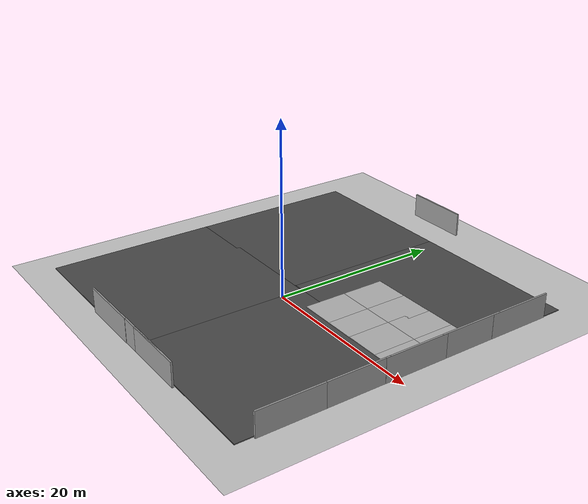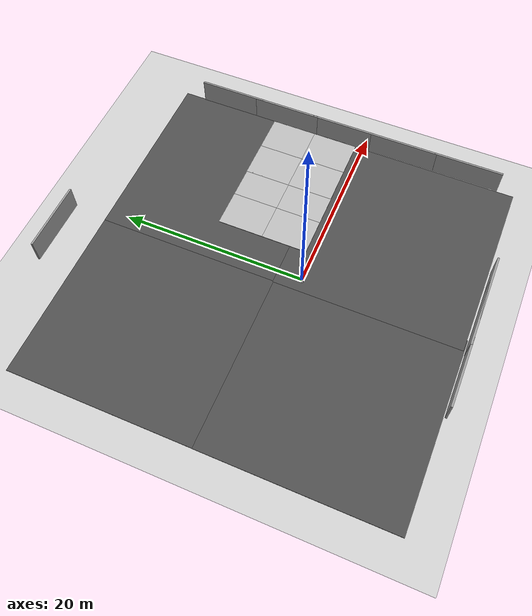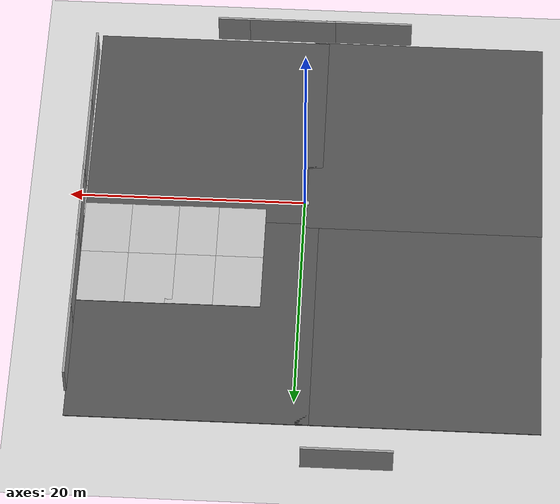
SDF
<sdf version="1.6">
 <world name="default">
  <model name="ground_plane">
   <static>1</static>
   <link name="link">
    <collision name="collision">
     <geometry><plane><normal>0 0 1</normal><size>100 100</size></plane></geometry>
     <surface><friction><ode><mu>100</mu><mu2>50</mu2></ode></friction></surface>
    </collision>
    <visual name="visual">
     <cast_shadows>0</cast_shadows>
     <geometry><plane><normal>0 0 1</normal><size>100 100</size></plane></geometry>
     <material>
      <script><uri>file://media/materials/scripts/gazebo.material</uri><name>Gazebo/Grey</name></script>
     </material>
    </visual>
   </link>
  </model>
  <model name="asphalt_plane">
   <static>1</static>
   <link name="link">
    <collision name="collision">
     <geometry><box><size>20 20 0.1</size></box></geometry>
     <surface><friction><ode><mu>100</mu><mu2>50</mu2></ode></friction></surface>
    </collision>
    <visual name="visual">
     <cast_shadows>0</cast_shadows>
     <geometry><box><size>20 20 0.1</size></box></geometry>
     <material>
      <script>
       <uri>model://asphalt_plane/materials/scripts</uri>
       <uri>model://asphalt_plane/materials/textures</uri>
       <name>vrc/asphalt</name>
      </script>
     </material>
    </visual>
   </link>
   <pose>-10.1692 -7.43707 0 0 -0 0</pose>
  </model>
  <model name="asphalt_plane_clone">
   <static>1</static>
   <link name="link">
    <collision name="collision">
     <geometry><box><size>20 20 0.1</size></box></geometry>
     <surface><friction><ode><mu>100</mu><mu2>50</mu2></ode></friction></surface>
    </collision>
    <visual name="visual">
     <cast_shadows>0</cast_shadows>
     <geometry><box><size>20 20 0.1</size></box></geometry>
     <material>
      <script>
       <uri>model://asphalt_plane/materials/scripts</uri>
       <uri>model://asphalt_plane/materials/textures</uri>
       <name>vrc/asphalt</name>
      </script>
     </material>
    </visual>
   </link>
   <pose>-10.1603 12.171 0 0 -0 0</pose>
  </model>
  <model name="asphalt_plane_clone_clone">
   <static>1</static>
   <link name="link">
    <collision name="collision">
     <geometry><box><size>20 20 0.1</size></box></geometry>
     <surface><friction><ode><mu>100</mu><mu2>50</mu2></ode></friction></surface>
    </collision>
    <visual name="visual">
     <cast_shadows>0</cast_shadows>
     <geometry><box><size>20 20 0.1</size></box></geometry>
     <material>
      <script>
       <uri>model://asphalt_plane/materials/scripts</uri>
       <uri>model://asphalt_plane/materials/textures</uri>
       <name>vrc/asphalt</name>
      </script>
     </material>
    </visual>
   </link>
   <pose>8.71597 12.1785 0 0 -0 0</pose>
  </model>
  <model name="asphalt_plane_clone_clone_0">
   <static>1</static>
   <link name="link">
    <collision name="collision">
     <geometry><box><size>20 20 0.1</size></box></geometry>
     <surface><friction><ode><mu>100</mu><mu2>50</mu2></ode></friction></surface>
    </collision>
    <visual name="visual">
     <cast_shadows>0</cast_shadows>
     <geometry><box><size>20 20 0.1</size></box></geometry>
     <material>
      <script>
       <uri>model://asphalt_plane/materials/scripts</uri>
       <uri>model://asphalt_plane/materials/textures</uri>
       <name>vrc/asphalt</name>
      </script>
     </material>
    </visual>
   </link>
   <pose>8.60996 -7.34898 0 0 -0 0</pose>
  </model>
  <model name="grey_wall">
   <static>1</static>
   <link name="link">
    <pose>0 0 1.4 0 -0 0</pose>
    <collision name="collision"><geometry><box><size>7.5 0.2 2.8</size></box></geometry></collision>
    <visual name="visual">
     <cast_shadows>0</cast_shadows>
     <geometry><box><size>7.5 0.2 2.8</size></box></geometry>
     <material>
      <script>
       <uri>model://grey_wall/materials/scripts</uri>
       <uri>model://grey_wall/materials/textures</uri>
       <name>vrc/grey_wall</name>
      </script>
     </material>
    </visual>
   </link>
   <pose>-4.8114 -17.6626 0 0 -0 0</pose>
  </model>
  <model name="grey_wall_clone">
   <static>1</static>
   <link name="link">
    <pose>0 0 1.4 0 -0 0</pose>
    <collision name="collision"><geometry><box><size>7.5 0.2 2.8</size></box></geometry></collision>
    <visual name="visual">
     <cast_shadows>0</cast_shadows>
     <geometry><box><size>7.5 0.2 2.8</size></box></geometry>
     <material>
      <script>
       <uri>model://grey_wall/materials/scripts</uri>
       <uri>model://grey_wall/materials/textures</uri>
       <name>vrc/grey_wall</name>
      </script>
     </material>
    </visual>
   </link>
   <pose>1.84642 -17.6367 0 0 -0 0</pose>
  </model>
  <model name="grey_wall_clone_0">
   <static>1</static>
   <link name="link">
    <pose>0 0 1.4 0 -0 0</pose>
    <collision name="collision"><geometry><box><size>7.5 0.2 2.8</size></box></geometry></collision>
    <visual name="visual">
     <cast_shadows>0</cast_shadows>
     <geometry><box><size>7.5 0.2 2.8</size></box></geometry>
     <material>
      <script>
       <uri>model://grey_wall/materials/scripts</uri>
       <uri>model://grey_wall/materials/textures</uri>
       <name>vrc/grey_wall</name>
      </script>
     </material>
    </visual>
   </link>
   <pose>4.62088 -17.6372 0 0 -0 0</pose>
  </model>
  <model name="grey_wall_clone_clone">
   <static>1</static>
   <link name="link">
    <pose>0 0 1.4 0 -0 0</pose>
    <collision name="collision"><geometry><box><size>7.5 0.2 2.8</size></box></geometry></collision>
    <visual name="visual">
     <cast_shadows>0</cast_shadows>
     <geometry><box><size>7.5 0.2 2.8</size></box></geometry>
     <material>
      <script>
       <uri>model://grey_wall/materials/scripts</uri>
       <uri>model://grey_wall/materials/textures</uri>
       <name>vrc/grey_wall</name>
      </script>
     </material>
    </visual>
   </link>
   <pose>-4.48764 26.0166 0 0 -0 0</pose>
  </model>
  <model name="grey_wall_clone_clone_clone">
   <static>1</static>
   <link name="link">
    <pose>0 0 1.4 0 -0 0</pose>
    <collision name="collision"><geometry><box><size>7.5 0.2 2.8</size></box></geometry></collision>
    <visual name="visual">
     <cast_shadows>0</cast_shadows>
     <geometry><box><size>7.5 0.2 2.8</size></box></geometry>
     <material>
      <script>
       <uri>model://grey_wall/materials/scripts</uri>
       <uri>model://grey_wall/materials/textures</uri>
       <name>vrc/grey_wall</name>
      </script>
     </material>
    </visual>
   </link>
   <pose>18.7544 16.0387 0 0 0 -1.56734</pose>
  </model>
  <model name="grey_wall_clone_clone_clone_clone">
   <static>1</static>
   <link name="link">
    <pose>0 0 1.4 0 -0 0</pose>
    <collision name="collision"><geometry><box><size>7.5 0.2 2.8</size></box></geometry></collision>
    <visual name="visual">
     <cast_shadows>0</cast_shadows>
     <geometry><box><size>7.5 0.2 2.8</size></box></geometry>
     <material>
      <script>
       <uri>model://grey_wall/materials/scripts</uri>
       <uri>model://grey_wall/materials/textures</uri>
       <name>vrc/grey_wall</name>
      </script>
     </material>
    </visual>
   </link>
   <pose>18.767 9.41754 0 0 0 -1.56734</pose>
  </model>
  <model name="grey_wall_clone_clone_clone_clone_0">
   <static>1</static>
   <link name="link">
    <pose>0 0 1.4 0 -0 0</pose>
    <collision name="collision"><geometry><box><size>7.5 0.2 2.8</size></box></geometry></collision>
    <visual name="visual">
     <cast_shadows>0</cast_shadows>
     <geometry><box><size>7.5 0.2 2.8</size></box></geometry>
     <material>
      <script>
       <uri>model://grey_wall/materials/scripts</uri>
       <uri>model://grey_wall/materials/textures</uri>
       <name>vrc/grey_wall</name>
      </script>
     </material>
    </visual>
   </link>
   <pose>18.7963 2.45369 0 0 0 -1.56734</pose>
  </model>
  <model name="grey_wall_clone_clone_clone_clone_1">
   <static>1</static>
   <link name="link">
    <pose>0 0 1.4 0 -0 0</pose>
    <collision name="collision"><geometry><box><size>7.5 0.2 2.8</size></box></geometry></collision>
    <visual name="visual">
     <cast_shadows>0</cast_shadows>
     <geometry><box><size>7.5 0.2 2.8</size></box></geometry>
     <material>
      <script>
       <uri>model://grey_wall/materials/scripts</uri>
       <uri>model://grey_wall/materials/textures</uri>
       <name>vrc/grey_wall</name>
      </script>
     </material>
    </visual>
   </link>
   <pose>18.8058 -4.41342 0 0 0 -1.56734</pose>
  </model>
  <model name="grey_wall_clone_clone_clone_clone_2">
   <static>1</static>
   <link name="link">
    <pose>0 0 1.4 0 -0 0</pose>
    <collision name="collision"><geometry><box><size>7.5 0.2 2.8</size></box></geometry></collision>
    <visual name="visual">
     <cast_shadows>0</cast_shadows>
     <geometry><box><size>7.5 0.2 2.8</size></box></geometry>
     <material>
      <script>
       <uri>model://grey_wall/materials/scripts</uri>
       <uri>model://grey_wall/materials/textures</uri>
       <name>vrc/grey_wall</name>
      </script>
     </material>
    </visual>
   </link>
   <pose>18.8343 -11.7301 0 0 0 -1.56734</pose>
  </model>
  <model name="mud_box">
   <static>1</static>
   <link name="link">
    <collision name="collision"><geometry><box><size>8 10 0.2</size></box></geometry></collision>
    <visual name="visual_1">
     <pose>-2 2.5 0 0 -0 0</pose>
     <cast_shadows>0</cast_shadows>
     <geometry><box><size>4 5 0.2</size></box></geometry>
     <material>
      <script>
       <uri>model://mud_box/materials/scripts</uri>
       <uri>model://mud_box/materials/textures</uri>
       <name>vrc/mud</name>
      </script>
     </material>
    </visual>
    <visual name="visual_2">
     <pose>2 2.5 0 0 -0 0</pose>
     <cast_shadows>0</cast_shadows>
     <geometry><box><size>4 5 0.2</size></box></geometry>
     <material>
      <script>
       <uri>model://mud_box/materials/scripts</uri>
       <uri>model://mud_box/materials/textures</uri>
       <name>vrc/mud</name>
      </script>
     </material>
    </visual>
    <visual name="visual_3">
     <pose>2 -2.5 0 0 -0 0</pose>
     <cast_shadows>0</cast_shadows>
     <geometry><box><size>4 5 0.2</size></box></geometry>
     <material>
      <script>
       <uri>model://mud_box/materials/scripts</uri>
       <uri>model://mud_box/materials/textures</uri>
       <name>vrc/mud</name>
      </script>
     </material>
    </visual>
    <visual name="visual_4">
     <pose>-2 -2.5 0 0 -0 0</pose>
     <cast_shadows>0</cast_shadows>
     <geometry><box><size>4 5 0.2</size></box></geometry>
     <material>
      <script>
       <uri>model://mud_box/materials/scripts</uri>
       <uri>model://mud_box/materials/textures</uri>
       <name>vrc/mud</name>
      </script>
     </material>
    </visual>
   </link>
   <pose>14.6137 5.86275 0 0 -0 0</pose>
  </model>
  <model name="mud_box_clone">
   <static>1</static>
   <link name="link">
    <collision name="collision"><geometry><box><size>8 10 0.2</size></box></geometry></collision>
    <visual name="visual_1">
     <pose>-2 2.5 0 0 -0 0</pose>
     <cast_shadows>0</cast_shadows>
     <geometry><box><size>4 5 0.2</size></box></geometry>
     <material>
      <script>
       <uri>model://mud_box/materials/scripts</uri>
       <uri>model://mud_box/materials/textures</uri>
       <name>vrc/mud</name>
      </script>
     </material>
    </visual>
    <visual name="visual_2">
     <pose>2 2.5 0 0 -0 0</pose>
     <cast_shadows>0</cast_shadows>
     <geometry><box><size>4 5 0.2</size></box></geometry>
     <material>
      <script>
       <uri>model://mud_box/materials/scripts</uri>
       <uri>model://mud_box/materials/textures</uri>
       <name>vrc/mud</name>
      </script>
     </material>
    </visual>
    <visual name="visual_3">
     <pose>2 -2.5 0 0 -0 0</pose>
     <cast_shadows>0</cast_shadows>
     <geometry><box><size>4 5 0.2</size></box></geometry>
     <material>
      <script>
       <uri>model://mud_box/materials/scripts</uri>
       <uri>model://mud_box/materials/textures</uri>
       <name>vrc/mud</name>
      </script>
     </material>
    </visual>
    <visual name="visual_4">
     <pose>-2 -2.5 0 0 -0 0</pose>
     <cast_shadows>0</cast_shadows>
     <geometry><box><size>4 5 0.2</size></box></geometry>
     <material>
      <script>
       <uri>model://mud_box/materials/scripts</uri>
       <uri>model://mud_box/materials/textures</uri>
       <name>vrc/mud</name>
      </script>
     </material>
    </visual>
   </link>
   <pose>7.23773 5.83307 0 0 -0 0</pose>
  </model>
  <light name="sun" type="directional">
   <pose>0 0 10 0 -0 0</pose>
   <diffuse>0.8 0.8 0.8 1</diffuse>
   <specular>0.2 0.2 0.2 1</specular>
   <attenuation>
    <range>1000</range>
    <constant>0.9</constant>
    <linear>0.01</linear>
    <quadratic>0.001</quadratic>
   </attenuation>
   <direction>-0.5 0.1 -0.9</direction>
  </light>
  <gravity>0 0 -9.8</gravity>
  <magnetic_field>6e-06 2.3e-05 -4.2e-05</magnetic_field>
  <atmosphere type="adiabatic"/>
  <physics name="default_physics" default="0" type="ode">
   <max_step_size>0.001</max_step_size>
   <real_time_factor>1</real_time_factor>
   <real_time_update_rate>1000</real_time_update_rate>
  </physics>
  <scene><ambient>0.4 0.4 0.4 1</ambient><background>0.7 0.7 0.7 1</background><shadows>1</shadows></scene>
  <audio><device>default</device></audio>
  <spherical_coordinates>
   <surface_model>EARTH_WGS84</surface_model>
   <latitude_deg>47.840640</latitude_deg>
   <longitude_deg>10.619944</longitude_deg>
   <elevation>740.0</elevation>
   <heading_deg>180</heading_deg>
  </spherical_coordinates>
  <include><uri>model://ad2_description</uri></include>
 </world>
</sdf>

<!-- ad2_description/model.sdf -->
<sdf version="1.5">
  <model name="basic_mobile_bot">
  <static>false</static>

  <!-- ****************** ROBOT BASE FOOTPRINT ***************************  -->
  <pose>0.0 0.0 0.0 0.0 0.0 0.0</pose>
  <link name="base_footprint"/>

  <!-- ********************** ROBOT BASE *********************************  -->
  <link name="base_link">

    <collision name="base_collision">
      <pose>0 0 0.1 0 0 0</pose>
      <geometry>
        <box>
          <size>0.70 0.39 0.20</size>
        </box>
      </geometry>
    </collision>

    <visual name="base_visual">
      <geometry>
      	<box>
          <size>0.70 0.39 0.20</size>
        </box>
       </geometry>
    </visual>
  </link>

  <!-- *********************** IMU SENSOR SETUP **************************  -->
  <link name="imu_link">
    <gravity>true</gravity>
    <sensor name="bmb_imu" type="imu">
      <always_on>true</always_on>
      <update_rate>100</update_rate>
      <visualize>true</visualize>
      <imu>
        <orientation>
          <x>
            <noise type="gaussian">
              <mean>0.0</mean>
              <stddev>2e-3</stddev>
            </noise>
          </x>
          <y>
            <noise type="gaussian">
              <mean>0.0</mean>
              <stddev>2e-3</stddev>
            </noise>
          </y>
          <z>
            <noise type="gaussian">
              <mean>0.0</mean>
              <stddev>2e-3</stddev>
            </noise>
          </z>
        </orientation>
        <angular_velocity>
          <x>
            <noise type="gaussian">
              <mean>0.0</mean>
              <stddev>2e-4</stddev>
            </noise>
          </x>
          <y>
            <noise type="gaussian">
              <mean>0.0</mean>
              <stddev>2e-4</stddev>
            </noise>
          </y>
          <z>
            <noise type="gaussian">
              <mean>0.0</mean>
              <stddev>2e-4</stddev>
            </noise>
          </z>
        </angular_velocity>
        <linear_acceleration>
          <x>
            <noise type="gaussian">
              <mean>0.0</mean>
              <stddev>1.7e-2</stddev>
            </noise>
          </x>
          <y>
            <noise type="gaussian">
              <mean>0.0</mean>
              <stddev>1.7e-2</stddev>
            </noise>
          </y>
          <z>
            <noise type="gaussian">
              <mean>0.0</mean>
              <stddev>1.7e-2</stddev>
            </noise>
          </z>
        </linear_acceleration>
      </imu>
      <plugin name="basic_mobile_bot_imu" filename="libgazebo_ros_imu_sensor.so">
        <initial_orientation_as_reference>false</initial_orientation_as_reference>
        <frame_name>imu_link</frame_name>
        <ros>
          <namespace>/imu</namespace>
          <remapping>~/out:=data</remapping>
        </ros>
      </plugin>
    </sensor>
  </link>

  <!-- *********************** GPS SETUP *********************************  -->
  <link name="gps_link">
    <sensor name="bmb_gps" type="gps">
      <always_on>true</always_on>
      <update_rate>10.0</update_rate>
      <gps>
        <position_sensing>
          <horizontal>
            <noise type="gaussian">
              <mean>0.0</mean>
              <stddev>1e-2</stddev>
            </noise>
          </horizontal>
          <vertical>
            <noise type="gaussian">
              <mean>0.0</mean>
              <stddev>1</stddev>
            </noise>
          </vertical>
        </position_sensing>
      </gps>
      <plugin name="basic_mobile_bot_gps" filename="libgazebo_ros_gps_sensor.so">
        <ros>
          <remapping>~/out:=gps/fix</remapping>
        </ros>
      </plugin>
    </sensor>
  </link>

  <!-- *********************** DRIVE WHEELS ******************************  -->
  <link name="r_drivewhl_l_link">
    <pose>-0.221 0.23 -0.05 0 1.570796 1.570796</pose>

    <collision name="r_drivewhl_l_collision">
      <geometry>
        <cylinder>
          <radius>0.14</radius>
          <length>0.06</length>
        </cylinder>
      </geometry>
    </collision>

    <visual name="r_drivewhl_l_visual">
      <geometry>
        <cylinder>
          <radius>0.14</radius>
          <length>0.06</length>
        </cylinder>
      </geometry>
    </visual>
  </link>

  <link name="r_drivewhl_r_link">
    <pose>-0.221 -0.23 -0.05 0 1.570796 1.570796</pose>

    <collision name="r_drivewhl_r_collision">
      <geometry>
        <cylinder>
          <radius>0.14</radius>
          <length>0.06</length>
        </cylinder>
      </geometry>
    </collision>

    <visual name="r_drivewhl_r_visual">
      <geometry>
        <cylinder>
          <radius>0.14</radius>
          <length>0.06</length>
        </cylinder>
      </geometry>
    </visual>
  </link>

    <link name="f_drivewhl_l_link">
    <pose>0.221 0.23 -0.05 0 1.570796 1.570796</pose>

    <collision name="f_drivewhl_l_collision">
      <geometry>
        <cylinder>
          <radius>0.14</radius>
          <length>0.06</length>
        </cylinder>
      </geometry>
    </collision>

    <visual name="f_drivewhl_l_visual">
      <geometry>
        <cylinder>
          <radius>0.14</radius>
          <length>0.06</length>
        </cylinder>
      </geometry>
    </visual>
  </link>

    <link name="f_drivewhl_r_link">
    <pose>0.221 -0.23 -0.05 0 1.570796 1.570796</pose>

    <collision name="f_drivewhl_r_collision">
      <geometry>
        <cylinder>
          <radius>0.14</radius>
          <length>0.06</length>
        </cylinder>
      </geometry>
    </collision>

    <visual name="f_drivewhl_r_visual">
      <geometry>
        <cylinder>
          <radius>0.14</radius>
          <length>0.06</length>
        </cylinder>
      </geometry>
    </visual>
  </link>

  <!-- ************************ JOINTS ***********************************  -->
  <!-- Pose of the joint is the same as the child link frame -->
  <!-- Axis is the axis of rotation relative to the child link frame -->

  <joint name="base_joint" type="fixed">
    <parent>base_footprint</parent>
    <child>base_link</child>
    <pose>0 0 0 0 0 0</pose>
  </joint>

  <joint name="r_drivewhl_l_joint" type="revolute">
    <parent>base_link</parent>
    <child>r_drivewhl_l_link</child>
    <pose>0 0 0 0 0 0</pose>
    <axis>
      <xyz>0 0 1</xyz>
    </axis>
  </joint>

  <joint name="r_drivewhl_r_joint" type="revolute">
    <parent>base_link</parent>
    <child>r_drivewhl_r_link</child>
    <pose>0 0 0 0 0 0</pose>
    <axis>
      <xyz>0 0 1</xyz>
    </axis>
  </joint>

   <joint name="f_drivewhl_l_joint" type="revolute">
    <parent>base_link</parent>
    <child>f_drivewhl_l_link</child>
    <pose>0 0 0 0 0 0</pose>
    <axis>
      <xyz>0 0 1</xyz>
    </axis>
  </joint>

   <joint name="f_drivewhl_r_joint" type="revolute">
    <parent>base_link</parent>
    <child>f_drivewhl_r_link</child>
    <pose>0 0 0 0 0 0</pose>
    <axis>
      <xyz>0 0 1</xyz>
    </axis>
  </joint>

  <joint name="imu_joint" type="fixed">
    <parent>base_link</parent>
    <child>imu_link</child>
    <pose>0 0 0 0 0 0</pose>
  </joint>

  <joint name="gps_joint" type="fixed">
    <parent>base_link</parent>
    <child>gps_link</child>
    <pose>0 0 0 0 0 0</pose>
  </joint>

 <!-- *********************** WHEEL ODOMETRY ***************************    -->
  <plugin name="basic_mobile_bot_diff_drive" filename="libgazebo_ros_diff_drive.so">

    <update_rate>30</update_rate>
    <num_wheel_pairs>2</num_wheel_pairs>
    <!-- wheels -->
    <left_joint>r_drivewhl_l_joint</left_joint>
    <right_joint>r_drivewhl_r_joint</right_joint>
    <left_joint>f_drivewhl_l_joint</left_joint>
    <right_joint>f_drivewhl_r_joint</right_joint>

    <!-- kinematics -->
    <wheel_separation>0.52</wheel_separation>
    <wheel_diameter>0.28</wheel_diameter>

    <!-- limits -->
    <max_wheel_torque>5</max_wheel_torque>
    <max_wheel_acceleration>1.0</max_wheel_acceleration>

    <!-- Receive velocity commands on this ROS topic -->
    <command_topic>cmd_vel</command_topic>

    <!-- output -->
    <!-- When false, publish no wheel odometry data to a ROS topic -->
    <publish_odom>true</publish_odom>

    <!-- When true, publish coordinate transform from odom to base_footprint -->
    <!-- I usually use the robot_localization package to publish this transform -->
    <publish_odom_tf>false</publish_odom_tf>

    <!-- When true, publish coordinate transform from base_link to the wheels -->
    <!-- The robot_state_publisher package is often used to publish this transform -->
    <publish_wheel_tf>false</publish_wheel_tf>

    <odometry_topic>odom</odometry_topic>
    <odometry_frame>odom</odometry_frame>
    <robot_base_frame>base_footprint</robot_base_frame>

    <!-- Odometry source, 0 for ENCODER, 1 for WORLD, defaults to WORLD -->
    <odometry_source>0</odometry_source>

    <!-- Change the ROS topic we will publish the odometry data to -->
    <ros>
      <remapping>odom:=wheel/odometry</remapping>
    </ros>

  </plugin>

 <!-- *********************** JOINT STATE PUBLISHER *********************   -->

  <plugin name="basic_mobile_bot_joint_state" filename="libgazebo_ros_joint_state_publisher.so">
    <ros>
      <remapping>~/out:=joint_states</remapping>
    </ros>
    <update_rate>30</update_rate>
    <joint_name>r_drivewhl_l_joint</joint_name>
    <joint_name>r_drivewhl_r_joint</joint_name>
    <joint_name>f_drivewhl_l_joint</joint_name>
    <joint_name>f_drivewhl_l_joint</joint_name>
  </plugin>

  </model>
</sdf>
